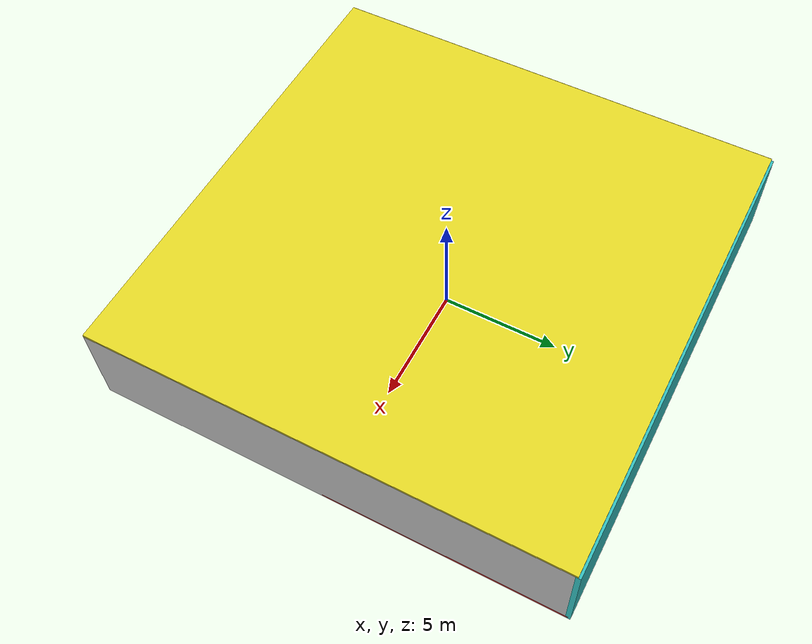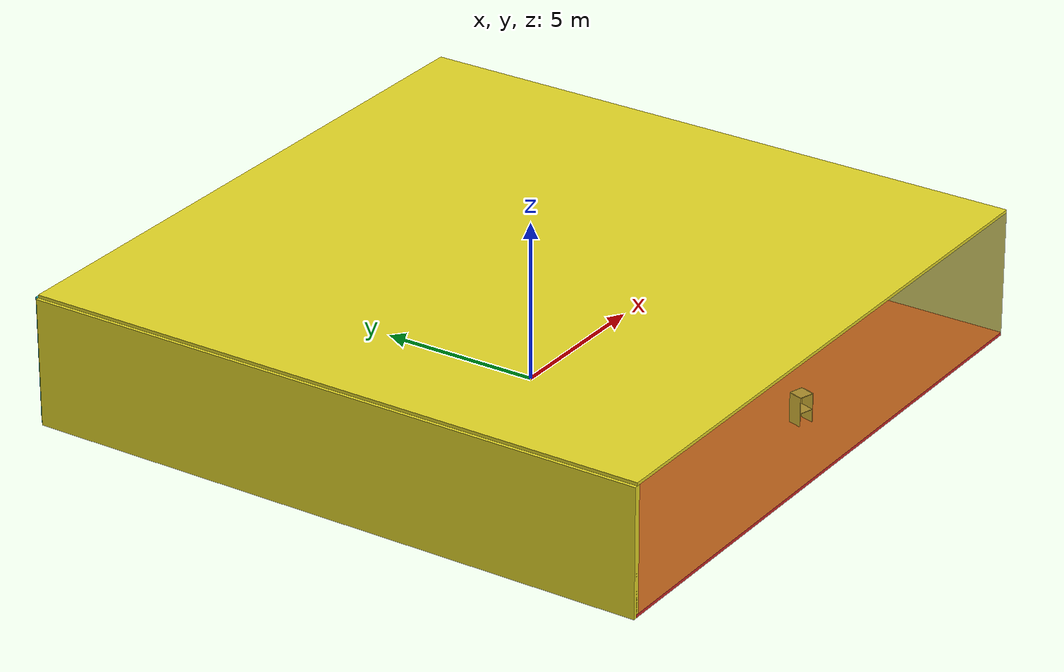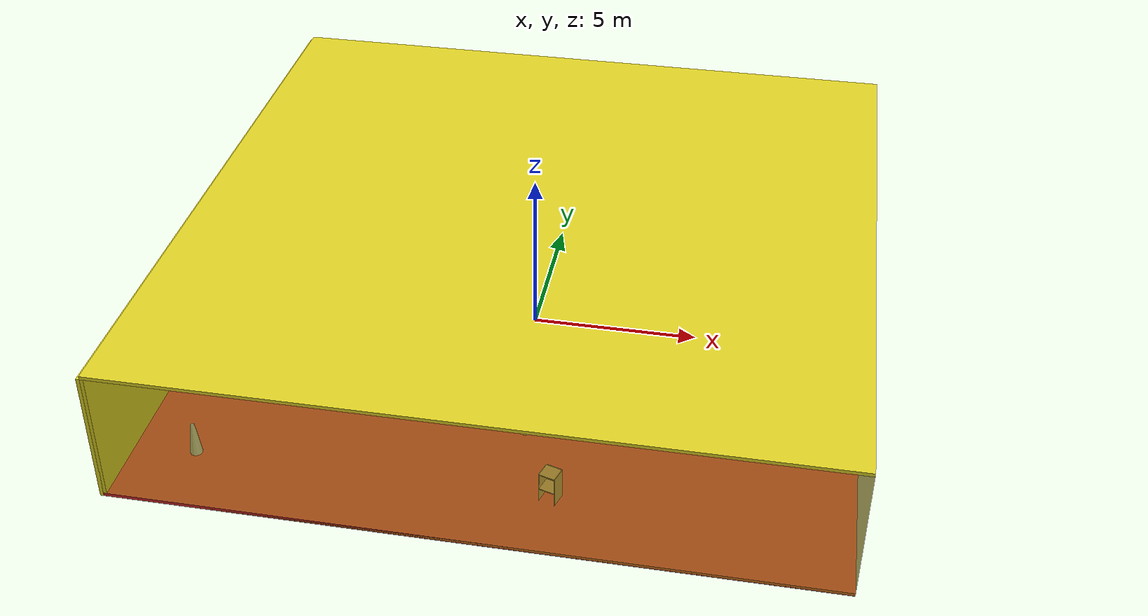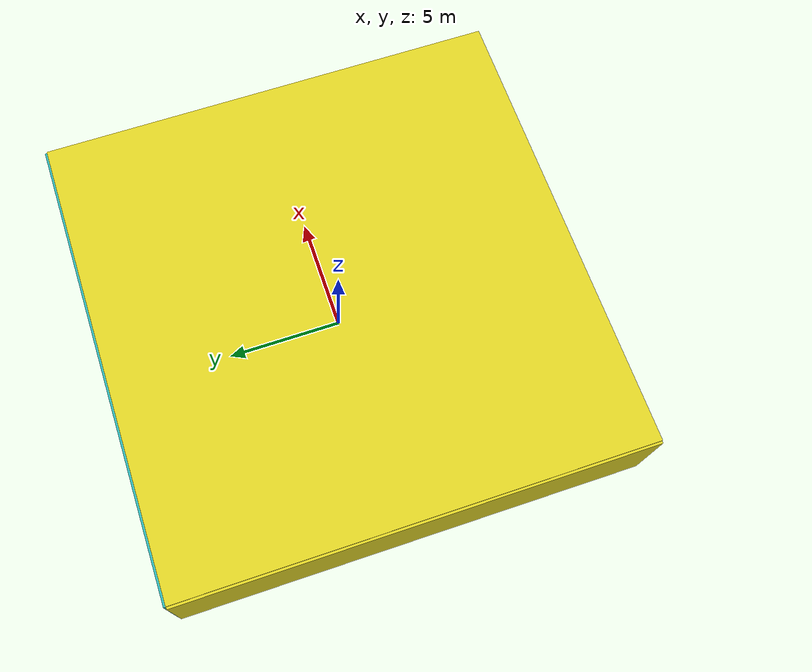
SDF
<sdf version="1.4">
 <world name="default">
  <physics type="ode">
   <max_step_size>0.001</max_step_size>
   <real_time_factor>1</real_time_factor>
   <real_time_update_rate>1000</real_time_update_rate>
   <gravity>0 0 -9.8</gravity>
  </physics>
  <scene><ambient>0.4 0.4 0.4 1</ambient><background>0.7 0.7 0.7 1</background><shadows>1</shadows></scene>
  <model name="Surrounding">
   <static>1</static>
   <link name="Ceiling">
    <collision name="Ceiling_Collision"><geometry><box><size>20 20 0.1</size></box></geometry></collision>
    <visual name="Ceiling_Visual">
     <geometry><box><size>20 20 0.1</size></box></geometry>
     <material>
      <script><uri>file://media/materials/scripts/gazebo.material</uri><name>Gazebo/Yellow</name></script>
     </material>
    </visual>
    <pose>0 0 4.05 0 0 0</pose>
   </link>
   <link name="Wall_South">
    <collision name="Wall_South_Collision">
     <geometry><box><size>20 0 4</size></box></geometry>
     <pose>0 0 2 0 -0 0</pose>
    </collision>
    <visual name="Wall_South_Visual">
     <pose>0 0 2 0 -0 0</pose>
     <geometry><box><size>20 0 4</size></box></geometry>
     <material>
      <script>
       <uri>file://media/materials/scripts/gazebo.material</uri>
       <name>Gazebo/YellowTransparent</name>
      </script>
     </material>
    </visual>
    <velocity_decay><linear>0</linear><angular>0</angular></velocity_decay>
    <pose>0 -10 0 0 -0 0</pose>
   </link>
   <link name="Wall_East">
    <collision name="Wall_21_Collision">
     <geometry><box><size>20 0 4</size></box></geometry>
     <pose>0 0 2 0 -0 0</pose>
    </collision>
    <visual name="Wall_21_Visual">
     <pose>0 0 2 0 -0 0</pose>
     <geometry><box><size>20 0 4</size></box></geometry>
     <material>
      <script><uri>file://media/materials/scripts/gazebo.material</uri><name>Gazebo/LightOn</name></script>
     </material>
    </visual>
    <velocity_decay><linear>0</linear><angular>0</angular></velocity_decay>
    <pose>10 0 0 0 -0 1.5708</pose>
   </link>
   <link name="Wall_North">
    <collision name="Wall_22_Collision">
     <geometry><box><size>20 0.2 4</size></box></geometry>
     <pose>0 0 2 0 -0 0</pose>
    </collision>
    <visual name="Wall_22_Visual">
     <pose>0 0 2 0 -0 0</pose>
     <geometry><box><size>20 0.2 4</size></box></geometry>
     <material>
      <script><uri>file://media/materials/scripts/gazebo.material</uri><name>Gazebo/Turquoise</name></script>
     </material>
    </visual>
    <velocity_decay><linear>0</linear><angular>0</angular></velocity_decay>
    <pose>0 10 0 0 -0 0</pose>
   </link>
   <link name="Wall_West">
    <collision name="Wall_23_Collision">
     <geometry><box><size>20 0.2 4</size></box></geometry>
     <pose>0 0 2 0 -0 0</pose>
    </collision>
    <visual name="Wall_23_Visual">
     <pose>0 0 2 0 -0 0</pose>
     <geometry><box><size>20 0.2 4</size></box></geometry>
     <material>
      <script><uri>file://media/materials/scripts/gazebo.material</uri><name>Gazebo/YellowGlow</name></script>
     </material>
    </visual>
    <velocity_decay><linear>0</linear><angular>0</angular></velocity_decay>
    <pose>-10 0 0 0 0 -1.5708</pose>
   </link>
   <link name="Ground_link">
    <collision name="collision">
     <pose>0 0 .05 0 -0 0</pose>
     <geometry><box><size>20 20 0.1</size></box></geometry>
    </collision>
    <visual name="visual">
     <pose>0 0 .05 0 -0 0</pose>
     <geometry><box><size>20 20 0.1</size></box></geometry>
     <material>
      <script><uri>file://media/materials/scripts/gazebo.material</uri><name>Gazebo/RedGlow</name></script>
     </material>
    </visual>
   </link>
   <static>1</static>
  </model>
  <spherical_coordinates>
   <surface_model>EARTH_WGS84</surface_model>
   <latitude_deg>0</latitude_deg>
   <longitude_deg>0</longitude_deg>
   <elevation>0</elevation>
   <heading_deg>0</heading_deg>
  </spherical_coordinates>
  <light name="lightball_0" type="diffuse">
   <diffuse>0.8 0.8 0.8 1</diffuse>
   <specular>0.2 0.2 0.2 1</specular>
   <attenuation>
    <range>100</range>
    <constant>0.7</constant>
    <linear>0.01</linear>
    <quadratic>0.001</quadratic>
   </attenuation>
   <direction>-0.5 0.1 -0.9</direction>
   <pose>9.2714412156 -8.72663128168 1.22544168865 0 0 0</pose>
  </light>
  <light name="lightball_1" type="diffuse">
   <diffuse>0.8 0.8 0.8 1</diffuse>
   <specular>0.2 0.2 0.2 1</specular>
   <attenuation>
    <range>100</range>
    <constant>0.7</constant>
    <linear>0.01</linear>
    <quadratic>0.001</quadratic>
   </attenuation>
   <direction>-0.5 0.1 -0.9</direction>
   <pose>7.48012983359 -5.08390426949 1.90632294033 0 0 0</pose>
  </light>
  <light name="lightball_2" type="diffuse">
   <diffuse>0.8 0.8 0.8 1</diffuse>
   <specular>0.2 0.2 0.2 1</specular>
   <attenuation>
    <range>100</range>
    <constant>0.7</constant>
    <linear>0.01</linear>
    <quadratic>0.001</quadratic>
   </attenuation>
   <direction>-0.5 0.1 -0.9</direction>
   <pose>-6.17368428616 -8.29024952903 3.18846879294 0 0 0</pose>
  </light>
  <light name="lightball_3" type="diffuse">
   <diffuse>0.8 0.8 0.8 1</diffuse>
   <specular>0.2 0.2 0.2 1</specular>
   <attenuation>
    <range>100</range>
    <constant>0.7</constant>
    <linear>0.01</linear>
    <quadratic>0.001</quadratic>
   </attenuation>
   <direction>-0.5 0.1 -0.9</direction>
   <pose>5.31144655718 -2.50327593656 2.28047543535 0 0 0</pose>
  </light>
  <light name="lightball_4" type="diffuse">
   <diffuse>0.8 0.8 0.8 1</diffuse>
   <specular>0.2 0.2 0.2 1</specular>
   <attenuation>
    <range>100</range>
    <constant>0.7</constant>
    <linear>0.01</linear>
    <quadratic>0.001</quadratic>
   </attenuation>
   <direction>-0.5 0.1 -0.9</direction>
   <pose>3.52195453826 -0.317243117927 1.42931870434 0 0 0</pose>
  </light>
  <light name="lightball_5" type="diffuse">
   <diffuse>0.8 0.8 0.8 1</diffuse>
   <specular>0.2 0.2 0.2 1</specular>
   <attenuation>
    <range>100</range>
    <constant>0.7</constant>
    <linear>0.01</linear>
    <quadratic>0.001</quadratic>
   </attenuation>
   <direction>-0.5 0.1 -0.9</direction>
   <pose>9.54372501784 -5.17214726771 3.55167856615 0 0 0</pose>
  </light>
  <light name="lightball_6" type="diffuse">
   <diffuse>0.8 0.8 0.8 1</diffuse>
   <specular>0.2 0.2 0.2 1</specular>
   <attenuation>
    <range>100</range>
    <constant>0.7</constant>
    <linear>0.01</linear>
    <quadratic>0.001</quadratic>
   </attenuation>
   <direction>-0.5 0.1 -0.9</direction>
   <pose>-3.92144191983 -5.9653985533 3.80860040072 0 0 0</pose>
  </light>
  <light name="lightball_7" type="diffuse">
   <diffuse>0.8 0.8 0.8 1</diffuse>
   <specular>0.2 0.2 0.2 1</specular>
   <attenuation>
    <range>100</range>
    <constant>0.7</constant>
    <linear>0.01</linear>
    <quadratic>0.001</quadratic>
   </attenuation>
   <direction>-0.5 0.1 -0.9</direction>
   <pose>-3.29002082845 -8.09797917237 1.79137654198 0 0 0</pose>
  </light>
  <light name="lightball_8" type="diffuse">
   <diffuse>0.8 0.8 0.8 1</diffuse>
   <specular>0.2 0.2 0.2 1</specular>
   <attenuation>
    <range>100</range>
    <constant>0.7</constant>
    <linear>0.01</linear>
    <quadratic>0.001</quadratic>
   </attenuation>
   <direction>-0.5 0.1 -0.9</direction>
   <pose>-5.74438457939 -0.580025554971 1.40575250001 0 0 0</pose>
  </light>
  <light name="lightball_9" type="diffuse">
   <diffuse>0.8 0.8 0.8 1</diffuse>
   <specular>0.2 0.2 0.2 1</specular>
   <attenuation>
    <range>100</range>
    <constant>0.7</constant>
    <linear>0.01</linear>
    <quadratic>0.001</quadratic>
   </attenuation>
   <direction>-0.5 0.1 -0.9</direction>
   <pose>-6.34712902835 -0.355097870607 1.28414457851 0 0 0</pose>
  </light>
  <light name="lightball_10" type="diffuse">
   <diffuse>0.8 0.8 0.8 1</diffuse>
   <specular>0.2 0.2 0.2 1</specular>
   <attenuation>
    <range>100</range>
    <constant>0.7</constant>
    <linear>0.01</linear>
    <quadratic>0.001</quadratic>
   </attenuation>
   <direction>-0.5 0.1 -0.9</direction>
   <pose>-8.88148382659 3.06610236602 2.28700721187 0 0 0</pose>
  </light>
  <light name="lightball_11" type="diffuse">
   <diffuse>0.8 0.8 0.8 1</diffuse>
   <specular>0.2 0.2 0.2 1</specular>
   <attenuation>
    <range>100</range>
    <constant>0.7</constant>
    <linear>0.01</linear>
    <quadratic>0.001</quadratic>
   </attenuation>
   <direction>-0.5 0.1 -0.9</direction>
   <pose>6.29330150419 1.66290078438 1.89970849711 0 0 0</pose>
  </light>
  <light name="lightball_12" type="diffuse">
   <diffuse>0.8 0.8 0.8 1</diffuse>
   <specular>0.2 0.2 0.2 1</specular>
   <attenuation>
    <range>100</range>
    <constant>0.7</constant>
    <linear>0.01</linear>
    <quadratic>0.001</quadratic>
   </attenuation>
   <direction>-0.5 0.1 -0.9</direction>
   <pose>-3.90619841498 1.51744564433 1.95848733535 0 0 0</pose>
  </light>
  <light name="lightball_13" type="diffuse">
   <diffuse>0.8 0.8 0.8 1</diffuse>
   <specular>0.2 0.2 0.2 1</specular>
   <attenuation>
    <range>100</range>
    <constant>0.7</constant>
    <linear>0.01</linear>
    <quadratic>0.001</quadratic>
   </attenuation>
   <direction>-0.5 0.1 -0.9</direction>
   <pose>-6.8250404214 2.31854927732 0.91589630553 0 0 0</pose>
  </light>
  <include>
   <uri>model://construction_cone</uri>
   <pose>-8.13186692256 -7.93498563417 0 0 0 2.11431621549</pose>
  </include>
  <include><uri>model://table</uri><pose>-6.89281382322 -4.29391736408 0 0 0 2.71223737192</pose></include>
  <include><uri>model://cabinet</uri><pose>-7.72767747639 -2.04818490177 0 0 0 0.851113409845</pose></include>
  <include><uri>model://cabinet</uri><pose>1.88311530111 -7.97952482799 0 0 0 1.266995549</pose></include>
  <include>
   <uri>model://robocup_3Dsim_goal</uri>
   <pose>1.35568083949 -4.71169244254 0 0 0 2.50166474715</pose>
  </include>
  <include>
   <uri>model://robocup_3Dsim_goal</uri>
   <pose>4.56308688387 4.37508921124 0 0 0 1.55306753383</pose>
  </include>
  <include><uri>model://cabinet</uri><pose>5.14047656079 7.0593398442 0 0 0 1.70004015634</pose></include>
 </world>
</sdf>

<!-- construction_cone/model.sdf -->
<sdf version="1.5">
  <model name="Construction Cone">
    <link name="link">
      <collision name="collision">
        <geometry>
          <mesh>
            <scale>10 10 10</scale>
            <uri>file://isr-testbed/construction_cone/meshes/construction_cone.dae</uri>
          </mesh>
        </geometry>
      </collision>
      <visual name="visual">
        <geometry>
          <mesh>
            <scale>10 10 10</scale>
            <uri>file://isr-testbed/construction_cone/meshes/construction_cone.dae</uri>
          </mesh>
        </geometry>
      </visual>
    </link>
  </model>
</sdf>

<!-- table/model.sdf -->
<sdf version="1.5">
  <model name="table">
    <static>true</static>
    <link name="link">
      <collision name="surface">
        <pose>0 0 1.0 0 0 0</pose>
        <geometry>
          <box>
            <size>1.5 0.8 0.03</size>
          </box>
        </geometry>
        <surface>
          <friction>
            <ode>
              <mu>0.6</mu>
              <mu2>0.6</mu2>
            </ode>
          </friction>
        </surface>
      </collision>
      <visual name="visual1">
        <pose>0 0 1.0 0 0 0</pose>
        <geometry>
          <box>
            <size>1.5 0.8 0.03</size>
          </box>
        </geometry>
        <material>
          <script>
            <uri>model://media/materials/scripts/gazebo.material</uri>
            <name>Gazebo/Wood</name>
          </script>
        </material>
      </visual>
      <collision name="front_left_leg">
        <pose>0.68 0.38 0.5 0 0 0</pose>
        <geometry>
          <cylinder>
            <radius>0.02</radius>
            <length>1.0</length>
          </cylinder>
        </geometry>
      </collision>
      <visual name="front_left_leg">
        <pose>0.68 0.38 0.5 0 0 0</pose>
        <geometry>
          <cylinder>
            <radius>0.02</radius>
            <length>1.0</length>
          </cylinder>
        </geometry>
        <material>
          <script>
            <uri>model://media/materials/scripts/gazebo.material</uri>
            <name>Gazebo/Grey</name>
          </script>
        </material>
      </visual>
      <collision name="front_right_leg">
        <pose>0.68 -0.38 0.5 0 0 0</pose>
        <geometry>
          <cylinder>
            <radius>0.02</radius>
            <length>1.0</length>
          </cylinder>
        </geometry>
      </collision>
      <visual name="front_right_leg">
        <pose>0.68 -0.38 0.5 0 0 0</pose>
        <geometry>
          <cylinder>
            <radius>0.02</radius>
            <length>1.0</length>
          </cylinder>
        </geometry>
        <material>
          <script>
            <uri>model://media/materials/scripts/gazebo.material</uri>
            <name>Gazebo/Grey</name>
          </script>
        </material>
      </visual>
      <collision name="back_right_leg">
        <pose>-0.68 -0.38 0.5 0 0 0</pose>
        <geometry>
          <cylinder>
            <radius>0.02</radius>
            <length>1.0</length>
          </cylinder>
        </geometry>
      </collision>
      <visual name="back_right_leg">
        <pose>-0.68 -0.38 0.5 0 0 0</pose>
        <geometry>
          <cylinder>
            <radius>0.02</radius>
            <length>1.0</length>
          </cylinder>
        </geometry>
        <material>
          <script>
            <uri>model://media/materials/scripts/gazebo.material</uri>
            <name>Gazebo/Grey</name>
          </script>
        </material>
      </visual>
      <collision name="back_left_leg">
        <pose>-0.68 0.38 0.5 0 0 0</pose>
        <geometry>
          <cylinder>
            <radius>0.02</radius>
            <length>1.0</length>
          </cylinder>
        </geometry>
      </collision>
      <visual name="back_left_leg">
        <pose>-0.68 0.38 0.5 0 0 0</pose>
        <geometry>
          <cylinder>
            <radius>0.02</radius>
            <length>1.0</length>
          </cylinder>
        </geometry>
        <material>
          <script>
            <uri>model://media/materials/scripts/gazebo.material</uri>
            <name>Gazebo/Grey</name>
          </script>
        </material>
      </visual>
    </link>
  </model>
</sdf>

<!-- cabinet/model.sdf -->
<sdf version="1.5">
  <model name="cabinet">
    <static>true</static>
    <link name="cabinet_bottom_plate">
      <inertial>
        <pose>0 0 -1 0 0 0</pose>
        <inertia>
          <ixx>2.050000</ixx>
          <ixy>0</ixy>
          <ixz>0</ixz>
          <iyy>2.050000</iyy>
          <iyz>0</iyz>
          <izz>2.050000</izz>
        </inertia>
        <mass>25.000000</mass>
      </inertial>
      <collision name="cabinet_bottom_plate_geom">
        <pose>0 0 0.010000 0 0 0</pose>
        <geometry>
          <box>
            <size>0.450000 0.450000 0.020000</size>
          </box>
        </geometry>
      </collision>
      <visual name="cabinet_bottom_plate_geom_visual">
        <pose>0 0 0.010000 0 0 0</pose>
        <geometry>
          <box>
            <size>0.450000 0.450000 0.020000</size>
          </box>
        </geometry>
        <material>
          <script>
            <uri>model://media/materials/scripts/gazebo.material</uri>
            <name>Gazebo/Wood</name>
          </script>
        </material>
      </visual>
      <collision name="cabinet_bottom_plate_geom_cabinet_back_plate">
        <pose>0.235000 0 0.510000 0 0 0</pose>
        <geometry>
          <box>
            <size>0.020000 0.450000 1.020000</size>
          </box>
        </geometry>
      </collision>
      <visual name="cabinet_bottom_plate_geom_cabinet_back_plate_visual">
        <pose>0.235000 0 0.510000 0 0 0</pose>
        <geometry>
          <box>
            <size>0.020000 0.450000 1.020000</size>
          </box>
        </geometry>
        <material>
          <script>
            <uri>model://media/materials/scripts/gazebo.material</uri>
            <name>Gazebo/Wood</name>
          </script>
        </material>
      </visual>
      <collision name="cabinet_bottom_plate_geom_cabinet_left_plate">
        <pose>0 0.235000 0.510000 0 0 0</pose>
        <geometry>
          <box>
            <size>0.450000 0.020000 1.020000</size>
          </box>
        </geometry>
      </collision>
      <visual name="cabinet_bottom_plate_geom_cabinet_left_plate_visual">
        <pose>0 0.235000 0.510000 0 0 0</pose>
        <geometry>
          <box>
            <size>0.450000 0.020000 1.020000</size>
          </box>
        </geometry>
        <material>
          <script>
            <uri>model://media/materials/scripts/gazebo.material</uri>
            <name>Gazebo/Wood</name>
          </script>
        </material>
      </visual>
      <collision name="cabinet_bottom_plate_geom_cabinet_middle_plate">
        <pose>0 0 0.510000 0 0 0</pose>
        <geometry>
          <box>
            <size>0.450000 0.450000 0.020000</size>
          </box>
        </geometry>
      </collision>
      <visual name="cabinet_bottom_plate_geom_cabinet_middle_plate_visual">
        <pose>0 0 0.510000 0 0 0</pose>
        <geometry>
          <box>
            <size>0.450000 0.450000 0.020000</size>
          </box>
        </geometry>
        <material>
          <script>
            <uri>model://media/materials/scripts/gazebo.material</uri>
            <name>Gazebo/Wood</name>
          </script>
        </material>
      </visual>
      <collision name="cabinet_bottom_plate_geom_cabinet_right_plate">
        <pose>0 -0.235000 0.510000 0 0 0</pose>
        <geometry>
          <box>
            <size>0.450000 0.020000 1.020000</size>
          </box>
        </geometry>
      </collision>
      <visual name="cabinet_bottom_plate_geom_cabinet_right_plate_visual">
        <pose>0 -0.235000 0.510000 0 0 0</pose>
        <geometry>
          <box>
            <size>0.450000 0.020000 1.020000</size>
          </box>
        </geometry>
        <material>
          <script>
            <uri>model://media/materials/scripts/gazebo.material</uri>
            <name>Gazebo/Wood</name>
          </script>
        </material>
      </visual>
      <collision name="cabinet_bottom_plate_geom_cabinet_top_plate">
        <pose>0 0 1.010000 0 0 0</pose>
        <geometry>
          <box>
            <size>0.450000 0.450000 0.020000</size>
          </box>
        </geometry>
      </collision>
      <visual name="cabinet_bottom_plate_geom_cabinet_top_plate_visual">
        <pose>0 0 1.010000 0 0 0</pose>
        <geometry>
          <box>
            <size>0.450000 0.450000 0.020000</size>
          </box>
        </geometry>
        <material>
          <script>
            <uri>model://media/materials/scripts/gazebo.material</uri>
            <name>Gazebo/Wood</name>
          </script>
        </material>
      </visual>
    </link>
  </model>
</sdf>

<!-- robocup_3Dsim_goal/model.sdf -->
<sdf version="1.5">
  <model name="robocup_3d_goal">
    <static>true</static>
    <link name="left_post">
      <pose>0 1.05 0.45 0 0 0</pose>
      <collision name="collision">
        <geometry>
          <cylinder>
            <radius>0.05</radius>
            <length>0.9</length>
          </cylinder>
        </geometry>
      </collision>
      <visual name="visual">
        <geometry>
          <cylinder>
            <radius>0.05</radius>
            <length>0.9</length>
          </cylinder>
        </geometry>
        <material>
          <script>
            <uri>file://media/materials/scripts/gazebo.material</uri>
            <name>Gazebo/ZincYellow</name>
          </script>
        </material>
      </visual>
    </link>
    <link name="left_support_horiz_lower">
      <pose>0.30 1.05 0.01 0 0 0</pose>
      <collision name="collision">
        <geometry>
          <box>
            <size>0.50 0.02 0.02</size>
          </box>
        </geometry>
      </collision>
      <visual name="visual">
        <geometry>
          <box>
            <size>0.50 0.02 0.02</size>
          </box>
        </geometry>
        <material>
          <script>
            <uri>file://media/materials/scripts/gazebo.material</uri>
            <name>Gazebo/White</name>
          </script>
        </material>
      </visual>
    </link>
    <link name="left_support_horiz_upper">
      <pose>0.30 1.05 0.79 0 0 0</pose>
      <collision name="collision">
        <geometry>
          <box>
            <size>0.50 0.02 0.02</size>
          </box>
        </geometry>
      </collision>
      <visual name="visual">
        <geometry>
          <box>
            <size>0.50 0.02 0.02</size>
          </box>
        </geometry>
        <material>
          <script>
            <uri>file://media/materials/scripts/gazebo.material</uri>
            <name>Gazebo/White</name>
          </script>
        </material>
      </visual>
    </link>
    <link name="left_support_vertical">
      <pose>0.56 1.05 0.4 0 1.5708 0</pose>
      <collision name="collision">
        <geometry>
          <box>
            <size>0.80 0.02 0.02</size>
          </box>
        </geometry>
      </collision>
      <visual name="visual">
        <geometry>
          <box>
            <size>0.80 0.02 0.02</size>
          </box>
        </geometry>
        <material>
          <script>
            <uri>file://media/materials/scripts/gazebo.material</uri>
            <name>Gazebo/White</name>
          </script>
        </material>
      </visual>
    </link>
    <link name="right_support_horiz_lower">
      <pose>0.30 -1.05 0.01 0 0 0</pose>
      <collision name="collision">
        <geometry>
          <box>
            <size>0.50 0.02 0.02</size>
          </box>
        </geometry>
      </collision>
      <visual name="visual">
        <geometry>
          <box>
            <size>0.50 0.02 0.02</size>
          </box>
        </geometry>
        <material>
          <script>
            <uri>file://media/materials/scripts/gazebo.material</uri>
            <name>Gazebo/White</name>
          </script>
        </material>
      </visual>
    </link>
    <link name="right_support_horiz_upper">
      <pose>0.30 -1.05 0.79 0 0 0</pose>
      <collision name="collision">
        <geometry>
          <box>
            <size>0.50 0.02 0.02</size>
          </box>
        </geometry>
      </collision>
      <visual name="visual">
        <geometry>
          <box>
            <size>0.50 0.02 0.02</size>
          </box>
        </geometry>
        <material>
          <script>
            <uri>file://media/materials/scripts/gazebo.material</uri>
            <name>Gazebo/White</name>
          </script>
        </material>
      </visual>
    </link>
    <link name="right_support_vertical">
      <pose>0.56 -1.05 0.4 0 1.5708 0</pose>
      <collision name="collision">
        <geometry>
          <box>
            <size>0.80 0.02 0.02</size>
          </box>
        </geometry>
      </collision>
      <visual name="visual">
        <geometry>
          <box>
            <size>0.80 0.02 0.02</size>
          </box>
        </geometry>
        <material>
          <script>
            <uri>file://media/materials/scripts/gazebo.material</uri>
            <name>Gazebo/White</name>
          </script>
        </material>
      </visual>
    </link>
    <link name="center_support_horiz_lower">
      <pose>0.56 0 0.01 0 1.5708 0</pose>
      <collision name="collision">
        <geometry>
          <box>
            <size>0.02 2.08 0.02</size>
          </box>
        </geometry>
      </collision>
      <visual name="visual">
        <geometry>
          <box>
            <size>0.02 2.08 0.02</size>
          </box>
        </geometry>
        <material>
          <script>
            <uri>file://media/materials/scripts/gazebo.material</uri>
            <name>Gazebo/White</name>
          </script>
        </material>
      </visual>
    </link>
    <link name="center_support_horiz_upper">
      <pose>0.56 0 0.79 0 1.5708 0</pose>
      <collision name="collision">
        <geometry>
          <box>
            <size>0.02 2.08 0.02</size>
          </box>
        </geometry>
      </collision>
      <visual name="visual">
        <geometry>
          <box>
            <size>0.02 2.08 0.02</size>
          </box>
        </geometry>
        <material>
          <script>
            <uri>file://media/materials/scripts/gazebo.material</uri>
            <name>Gazebo/White</name>
          </script>
        </material>
      </visual>
    </link>
    <link name="right_post">
      <pose>0 -1.05 0.45 0 0 0</pose>
      <collision name="collision">
        <geometry>
          <cylinder>
            <radius>0.05</radius>
            <length>0.9</length>
          </cylinder>
        </geometry>
      </collision>
      <visual name="visual">
        <geometry>
          <cylinder>
            <radius>0.05</radius>
            <length>0.9</length>
          </cylinder>
        </geometry>
        <material>
          <script>
            <uri>file://media/materials/scripts/gazebo.material</uri>
            <name>Gazebo/ZincYellow</name>
          </script>
        </material>
      </visual>
    </link>
    <link name="crossbar">
      <pose>0 0 0.85 1.57 1.57 0</pose>
      <collision name="collision">
        <geometry>
          <cylinder>
            <radius>0.05</radius>
            <length>2.0</length>
          </cylinder>
        </geometry>
      </collision>
      <visual name="visual">
        <geometry>
          <cylinder>
            <radius>0.05</radius>
            <length>2.0</length>
          </cylinder>
        </geometry>
        <material>
          <script>
            <uri>file://media/materials/scripts/gazebo.material</uri>
            <name>Gazebo/ZincYellow</name>
          </script>
        </material>
      </visual>
    </link>
    <link name="center_net">
      <pose>0.56 0 0.40 0 0 0</pose>
      <collision name="collision">
        <geometry>
          <box>
            <size>0.01 2.1 0.80</size>
          </box>
        </geometry>
      </collision>
      <visual name="visual">
        <geometry>
          <box>
            <size>0.01 2.1 0.80</size>
          </box>
        </geometry>
        <material>
          <script>
            <uri>model://../model_source/models/robocup09_spl_field/materials/scripts/</uri>
            <uri>model://../model_source/models/robocup09_spl_field/materials/textures/</uri>
            <name>RoboCup/Net</name>
          </script>
        </material>
      </visual>
    </link>
    <link name="left_net">
      <pose>0.30 1.05 0.40 0 0 0</pose>
      <collision name="collision">
        <geometry>
          <box>
            <size>0.50 0.01 0.76</size>
          </box>
        </geometry>
      </collision>
      <visual name="visual">
        <geometry>
          <box>
            <size>0.50 0.01 0.76</size>
          </box>
        </geometry>
        <material>
          <script>
            <uri>model://../model_source/models/robocup09_spl_field/materials/scripts/</uri>
            <uri>model://../model_source/models/robocup09_spl_field/materials/textures/</uri>
            <name>RoboCup/Net</name>
          </script>
        </material>
      </visual>
    </link>
    <link name="right_net">
      <pose>0.30 -1.05 0.40 0 0 0</pose>
      <collision name="collision">
        <geometry>
          <box>
            <size>0.50 0.01 0.76</size>
          </box>
        </geometry>
      </collision>
      <visual name="visual">
        <geometry>
          <box>
            <size>0.50 0.01 0.76</size>
          </box>
        </geometry>
        <material>
          <script>
            <uri>model://../model_source/models/robocup09_spl_field/materials/scripts/</uri>
            <uri>model://../model_source/models/robocup09_spl_field/materials/textures/</uri>
            <name>RoboCup/Net</name>
          </script>
        </material>
      </visual>
    </link>
  </model>
</sdf>
